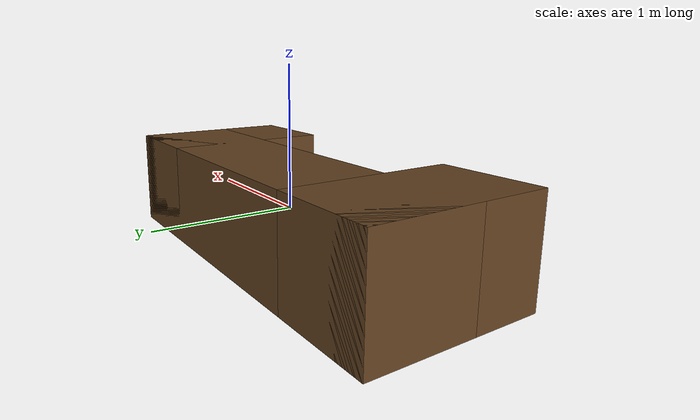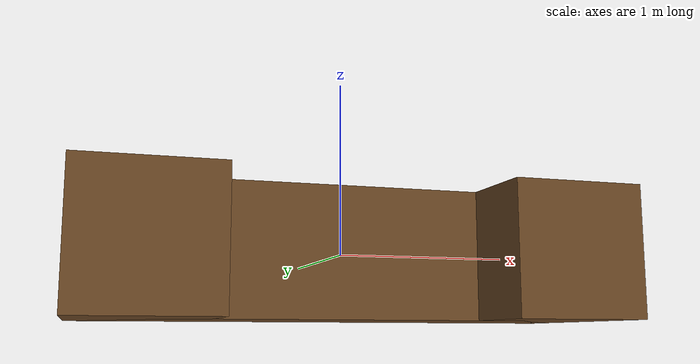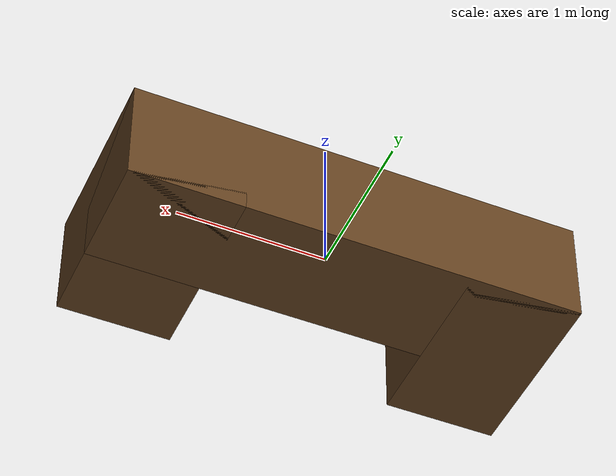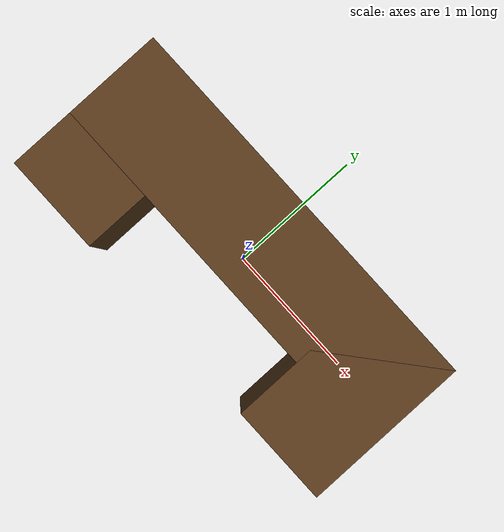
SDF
<?xml version='1.0'?>
<sdf version='1.6'>
  <model name='Desk'>
    <link name='link_1'>
      <inertial>
        <mass>75</mass>
        <inertia>
          <ixx>6.89203</ixx>
          <ixy>0</ixy>
          <ixz>0</ixz>
          <iyy>59.6264</iyy>
          <iyz>0</iyz>
          <izz>59.7656</izz>
        </inertia>
        <pose frame=''>0 0 0 0 -0 0</pose>
      </inertial>
      <pose frame=''>0.00454 0.166666 0 0 -0 0</pose>
      <gravity>1</gravity>
      <self_collide>0</self_collide>
      <kinematic>0</kinematic>
      <enable_wind>0</enable_wind>
      <visual name='visual'>
        <pose frame=''>0 0 0 0 -0 0</pose>
        <geometry>
          <box>
            <size>3 0.75 0.735</size>
          </box>
        </geometry>
        <material>
          <lighting>1</lighting>
          <script>
            <uri>file://media/materials/scripts/gazebo.material</uri>
            <name>Gazebo/Grey</name>
          </script>
          <shader type='vertex'>
            <normal_map>__default__</normal_map>
          </shader>
          <ambient>0.395 0.262 0.129 1</ambient>
          <diffuse>0.7 0.7 0.7 1</diffuse>
          <specular>0.01 0.01 0.01 1</specular>
          <emissive>0 0 0 1</emissive>
        </material>
        <transparency>0</transparency>
        <cast_shadows>1</cast_shadows>
      </visual>
      <collision name='collision'>
        <laser_retro>0</laser_retro>
        <max_contacts>10</max_contacts>
        <pose frame=''>0 0 0 0 -0 0</pose>
        <geometry>
          <box>
            <size>3 0.75 0.735</size>
          </box>
        </geometry>
        <surface>
          <friction>
            <ode>
              <mu>1</mu>
              <mu2>1</mu2>
              <fdir1>0 0 0</fdir1>
              <slip1>0</slip1>
              <slip2>0</slip2>
            </ode>
            <torsional>
              <coefficient>1</coefficient>
              <patch_radius>0</patch_radius>
              <surface_radius>0</surface_radius>
              <use_patch_radius>1</use_patch_radius>
              <ode>
                <slip>0</slip>
              </ode>
            </torsional>
          </friction>
          <bounce>
            <restitution_coefficient>0</restitution_coefficient>
            <threshold>1e+06</threshold>
          </bounce>
          <contact>
            <collide_without_contact>0</collide_without_contact>
            <collide_without_contact_bitmask>1</collide_without_contact_bitmask>
            <collide_bitmask>1</collide_bitmask>
            <ode>
              <soft_cfm>0</soft_cfm>
              <soft_erp>0.2</soft_erp>
              <kp>1e+13</kp>
              <kd>1</kd>
              <max_vel>0.01</max_vel>
              <min_depth>0</min_depth>
            </ode>
            <bullet>
              <split_impulse>1</split_impulse>
              <split_impulse_penetration_threshold>-0.01</split_impulse_penetration_threshold>
              <soft_cfm>0</soft_cfm>
              <soft_erp>0.2</soft_erp>
              <kp>1e+13</kp>
              <kd>1</kd>
            </bullet>
          </contact>
        </surface>
      </collision>
    </link>
    <link name='link_2'>
      <inertial>
        <mass>75</mass>
        <inertia>
          <ixx>13.142</ixx>
          <ixy>0</ixy>
          <ixz>0</ixz>
          <iyy>6.89203</iyy>
          <iyz>0</iyz>
          <izz>13.2812</izz>
        </inertia>
        <pose frame=''>0 0 0 0 -0 0</pose>
      </inertial>
      <pose frame=''>-1.12046 -0.083334 0 0 -0 0</pose>
      <gravity>1</gravity>
      <self_collide>0</self_collide>
      <kinematic>0</kinematic>
      <enable_wind>0</enable_wind>
      <visual name='visual'>
        <pose frame=''>0 0 0 0 -0 0</pose>
        <geometry>
          <box>
            <size>0.75 1.25 0.735</size>
          </box>
        </geometry>
        <material>
          <lighting>1</lighting>
          <script>
            <uri>file://media/materials/scripts/gazebo.material</uri>
            <name>Gazebo/Grey</name>
          </script>
          <shader type='vertex'>
            <normal_map>__default__</normal_map>
          </shader>
          <ambient>0.395 0.262 0.129 1</ambient>
          <diffuse>0.7 0.7 0.7 1</diffuse>
          <specular>0.01 0.01 0.01 1</specular>
          <emissive>0 0 0 1</emissive>
        </material>
        <transparency>0</transparency>
        <cast_shadows>1</cast_shadows>
      </visual>
      <collision name='collision'>
        <laser_retro>0</laser_retro>
        <max_contacts>10</max_contacts>
        <pose frame=''>0 0 0 0 -0 0</pose>
        <geometry>
          <box>
            <size>0.75 1.25 0.735</size>
          </box>
        </geometry>
        <surface>
          <friction>
            <ode>
              <mu>1</mu>
              <mu2>1</mu2>
              <fdir1>0 0 0</fdir1>
              <slip1>0</slip1>
              <slip2>0</slip2>
            </ode>
            <torsional>
              <coefficient>1</coefficient>
              <patch_radius>0</patch_radius>
              <surface_radius>0</surface_radius>
              <use_patch_radius>1</use_patch_radius>
              <ode>
                <slip>0</slip>
              </ode>
            </torsional>
          </friction>
          <bounce>
            <restitution_coefficient>0</restitution_coefficient>
            <threshold>1e+06</threshold>
          </bounce>
          <contact>
            <collide_without_contact>0</collide_without_contact>
            <collide_without_contact_bitmask>1</collide_without_contact_bitmask>
            <collide_bitmask>1</collide_bitmask>
            <ode>
              <soft_cfm>0</soft_cfm>
              <soft_erp>0.2</soft_erp>
              <kp>1e+13</kp>
              <kd>1</kd>
              <max_vel>0.01</max_vel>
              <min_depth>0</min_depth>
            </ode>
            <bullet>
              <split_impulse>1</split_impulse>
              <split_impulse_penetration_threshold>-0.01</split_impulse_penetration_threshold>
              <soft_cfm>0</soft_cfm>
              <soft_erp>0.2</soft_erp>
              <kp>1e+13</kp>
              <kd>1</kd>
            </bullet>
          </contact>
        </surface>
      </collision>
    </link>
    <link name='link_2_clone'>
      <inertial>
        <mass>75</mass>
        <inertia>
          <ixx>13.142</ixx>
          <ixy>0</ixy>
          <ixz>0</ixz>
          <iyy>6.89203</iyy>
          <iyz>0</iyz>
          <izz>13.2812</izz>
        </inertia>
        <pose frame=''>0 0 0 0 -0 0</pose>
      </inertial>
      <pose frame=''>1.12954 -0.083334 0 0 -0 0</pose>
      <gravity>1</gravity>
      <self_collide>0</self_collide>
      <kinematic>0</kinematic>
      <enable_wind>0</enable_wind>
      <visual name='visual'>
        <pose frame=''>0 0 0 0 -0 0</pose>
        <geometry>
          <box>
            <size>0.75 1.25 0.735</size>
          </box>
        </geometry>
        <material>
          <lighting>1</lighting>
          <script>
            <uri>file://media/materials/scripts/gazebo.material</uri>
            <name>Gazebo/Grey</name>
          </script>
          <shader type='vertex'>
            <normal_map>__default__</normal_map>
          </shader>
          <ambient>0.395 0.262 0.129 1</ambient>
          <diffuse>0.7 0.7 0.7 1</diffuse>
          <specular>0.01 0.01 0.01 1</specular>
          <emissive>0 0 0 1</emissive>
        </material>
        <transparency>0</transparency>
        <cast_shadows>1</cast_shadows>
      </visual>
      <collision name='collision'>
        <laser_retro>0</laser_retro>
        <max_contacts>10</max_contacts>
        <pose frame=''>0 0 0 0 -0 0</pose>
        <geometry>
          <box>
            <size>0.75 1.25 0.735</size>
          </box>
        </geometry>
        <surface>
          <friction>
            <ode>
              <mu>1</mu>
              <mu2>1</mu2>
              <fdir1>0 0 0</fdir1>
              <slip1>0</slip1>
              <slip2>0</slip2>
            </ode>
            <torsional>
              <coefficient>1</coefficient>
              <patch_radius>0</patch_radius>
              <surface_radius>0</surface_radius>
              <use_patch_radius>1</use_patch_radius>
              <ode>
                <slip>0</slip>
              </ode>
            </torsional>
          </friction>
          <bounce>
            <restitution_coefficient>0</restitution_coefficient>
            <threshold>1e+06</threshold>
          </bounce>
          <contact>
            <collide_without_contact>0</collide_without_contact>
            <collide_without_contact_bitmask>1</collide_without_contact_bitmask>
            <collide_bitmask>1</collide_bitmask>
            <ode>
              <soft_cfm>0</soft_cfm>
              <soft_erp>0.2</soft_erp>
              <kp>1e+13</kp>
              <kd>1</kd>
              <max_vel>0.01</max_vel>
              <min_depth>0</min_depth>
            </ode>
            <bullet>
              <split_impulse>1</split_impulse>
              <split_impulse_penetration_threshold>-0.01</split_impulse_penetration_threshold>
              <soft_cfm>0</soft_cfm>
              <soft_erp>0.2</soft_erp>
              <kp>1e+13</kp>
              <kd>1</kd>
            </bullet>
          </contact>
        </surface>
      </collision>
    </link>
    <static>0</static>
    <allow_auto_disable>1</allow_auto_disable>
  </model>
</sdf>
